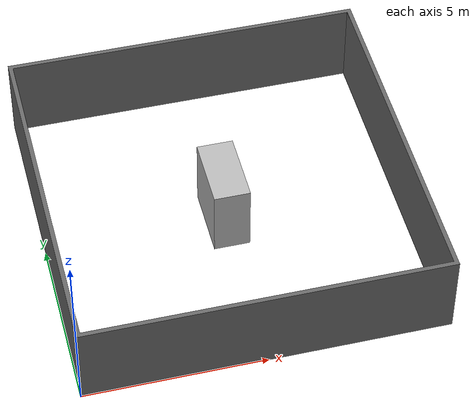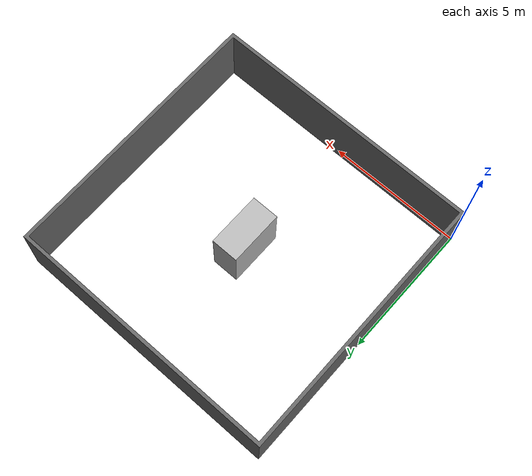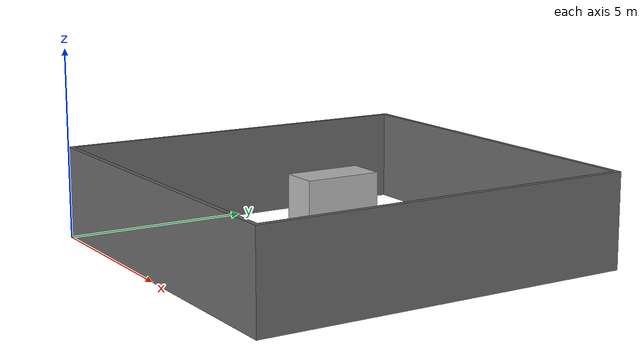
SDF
<?xml version="1.0" ?>
<sdf version="1.5">
  <model name="room_closed_10m_10m_single_obstacle">
    <static>true</static>
    <pose>0 0 0 0 0 0</pose>
    <link name="walls">
      <collision name="collision">
        <geometry>
          <mesh>
            <uri>model://room_closed_10m_10m_single_obstacle/meshes/room_closed_10m_10m_single_obstacle.dae</uri>
          </mesh>
        </geometry>
      </collision>
      <visual name="visual">
        <geometry>
          <mesh>
            <uri>model:////room_closed_10m_10m_single_obstacle/meshes/room_closed_10m_10m_single_obstacle.dae</uri>
          </mesh>
        </geometry>
        <cast_shadows>false</cast_shadows>
      </visual>
    </link>
  </model>
</sdf>
